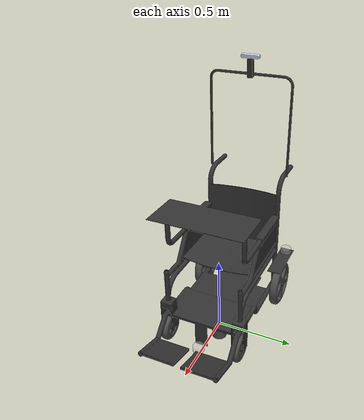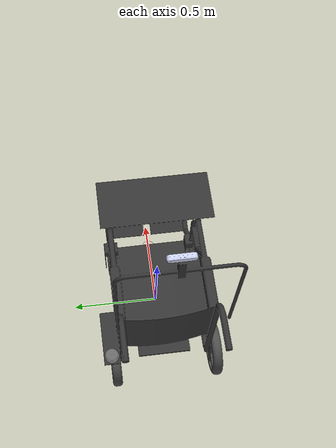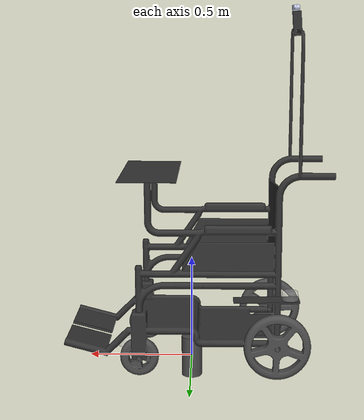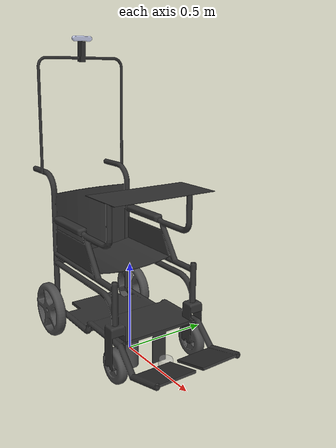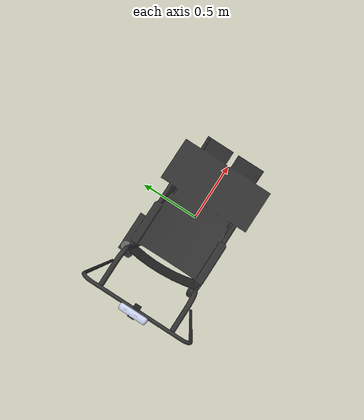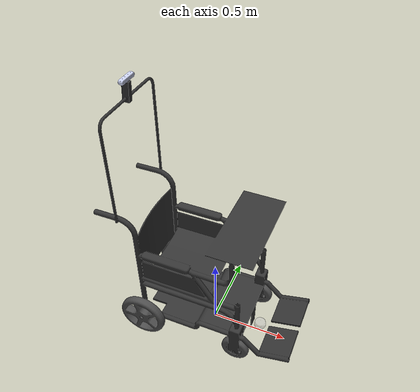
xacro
<?xml version="1.0"?>
<robot name="wheel_chair" xmlns:xacro="http://ros.org/wiki/xacro">
  <xacro:include filename="$(find wheelchair_description)/urdf/wheel_chair.gazebo.xacro" />

  <link name="base_footprint" >
    <inertial>
      <origin
        xyz="8.32667268468867E-17 -0.0275 9.43689570931383E-16"
        rpy="0 0 0" />
      <mass
        value="0.1" />
      <inertia
        ixx="0.0222055020892376"
        ixy="2.73068863816006E-19"
        ixz="-2.79570503430672E-17"
        iyy="0.0429444812918596"
        iyz="-3.90098376880016E-20"
        izz="0.0222055020892377" />
    </inertial>
    <visual>
      <origin
        xyz="0 0 0"
        rpy="0 0 0" />
      <geometry>
        <cylinder length = "0.2" radius="0.05" />
      </geometry>
      <material
        name="">
        <color
          rgba="0.298039215686275 0.298039215686275 0.298039215686275 1" />
      </material>
    </visual>
    <collision>
      <origin
        xyz="-0.4 0 0.15345"
        rpy="0 0 0" /> <!-- contact sensorle ilgili ypailmis degisikliklerden oturu sorun cikarsa burda cok sey degisecek direkt 11 temmuz 2023 lü github versiyonuna döndür -->
      <geometry>
        <mesh
          filename="package://wheel_chair/meshes/base_link.STL" />
      </geometry>
    </collision>

</link>

  <joint name="base_joint" type="fixed">
    <parent link="base_footprint" />
    <child link="base_link" />
    <origin xyz="-0.40 0.0 0.15345" rpy="0 0 0" /><!--Bu contact icin yapilmis footprint degisikligi geri alindiginda aktif edilecek -->
  </joint>

  <link
    name="base_link">
    <inertial>
      <origin
        xyz="0.367710115990865 0.00427594055759772 0.222806503300556"
        rpy="0 0 0" />
      <mass
        value="184.238834662291" />
      <inertia
        ixx="4.71175664250457"
        ixy="0.0385230868676068"
        ixz="1.0740814957226"
        iyy="7.70372211875449"
        iyz="0.0449177005185298"
        izz="4.26521836376027" />
    </inertial>
    <visual>
      <origin
        xyz="0 0 0"
        rpy="0 0 0" />
      <geometry>
        <mesh
          filename="package://wheel_chair/meshes/base_link.STL" />
      </geometry>
      <material
        name="">
        <color
          rgba="0.2 0.2 0.2 1" />
      </material>
    </visual>
    <collision>
      <origin
        xyz="0 0 0"
        rpy="0 0 0" />
      <geometry>
        <mesh
          filename="package://wheel_chair/meshes/base_link.STL" />
      </geometry>
    </collision>
  </link>

  <joint name="imu_joint" type="fixed">
    <parent link="base_link" />
    <child link="imu_link" />
    <origin xyz="-0.032 0 0.068" rpy="0 0 0" />
  </joint>

  <link name="imu_link" />

  <link
    name="left_big_wheel">
    <inertial>
      <origin
        xyz="8.32667268468867E-17 -0.0275 9.43689570931383E-16"
        rpy="0 0 0" />
      <mass
        value="3.19005851775017" />
      <inertia
        ixx="0.0222055020892376"
        ixy="2.73068863816006E-19"
        ixz="-2.79570503430672E-17"
        iyy="0.0429444812918596"
        iyz="-3.90098376880016E-20"
        izz="0.0222055020892377" />
    </inertial>
    <visual>
      <origin
        xyz="0 0 0"
        rpy="0 0 0" />
      <geometry>
        <mesh
          filename="package://wheel_chair/meshes/left_big_wheel.STL" />
      </geometry>
      <material
        name="">
        <color
          rgba="0.298039215686275 0.298039215686275 0.298039215686275 1" />
      </material>
    </visual>
    <collision>
      <origin
        xyz="0 0 0"
        rpy="0 0 0" />
      <geometry>
        <mesh
          filename="package://wheel_chair/meshes/left_big_wheel.STL" />
      </geometry>
    </collision>
  </link>

  <joint name="left_big_wheel_joint" type="continuous">
    <origin xyz="0 0.315 0" rpy="0 0 0" />
    <parent link="base_link" />
    <child link="left_big_wheel" />
    <axis xyz="0 1 0" />
  </joint>

  <link name="right_big_wheel">
    <inertial>
      <origin
        xyz="1.60982338570648E-15 0.0275 1.11022302462516E-15"
        rpy="0 0 0" />
      <mass value="3.19005851775018" />
      <inertia
        ixx="0.0222055020892377"
        ixy="-5.02793463534266E-19"
        ixz="-1.06280135567754E-17"
        iyy="0.0429444812918596"
        iyz="1.34367218703133E-19"
        izz="0.0222055020892377" />
    </inertial>
    <visual>
      <origin
        xyz="0 0 0"
        rpy="0 0 0" />
      <geometry>
        <mesh
          filename="package://wheel_chair/meshes/right_big_wheel.STL" />
      </geometry>
      <material
        name="">
        <color
          rgba="0.298039215686275 0.298039215686275 0.298039215686275 1" />
      </material>
    </visual>
    <collision>
      <origin
        xyz="0 0 0"
        rpy="0 0 0" />
      <geometry>
        <mesh
          filename="package://wheel_chair/meshes/right_big_wheel.STL" />
      </geometry>
    </collision>
  </link>
  <joint
    name="right_big_wheel_joint"
    type="continuous">
    <origin
      xyz="0 -0.315 0"
      rpy="0 0 0" />
    <parent
      link="base_link" />
    <child
      link="right_big_wheel" />
    <axis
      xyz="0 1 0" />
    <limit
      effort="1"
      velocity="1" />
  </joint>
  <link
    name="left_small_wheel">
    <inertial>
      <origin
        xyz="-7.21644966006352E-16 -0.0400000000000002 0"
        rpy="0 0 0" />
      <mass
        value="1.31881639542862" />
      <inertia
        ixx="0.00307756206748821"
        ixy="-4.86196911723968E-19"
        ixz="1.29760768970133E-20"
        iyy="0.00569232821091254"
        iyz="1.99882167723138E-20"
        izz="0.00307756206748821" />
    </inertial>
    <visual>
      <origin
        xyz="0 0 0"
        rpy="0 0 0" />
      <geometry>
        <mesh
          filename="package://wheel_chair/meshes/left_small_wheel.STL" />
      </geometry>
      <material
        name="">
        <color
          rgba="0.298039215686275 0.298039215686275 0.298039215686275 1" />
      </material>
    </visual>
    <collision>
      <origin
        xyz="0 0 0"
        rpy="0 0 0" />
      <geometry>
        <mesh
          filename="package://wheel_chair/meshes/left_small_wheel.STL" />
      </geometry>
    </collision>
  </link>

  <joint
    name="left_small_wheel_joint"
    type="revolute">
    <origin
      xyz="0.64005 0.2835 -0.065"
      rpy="0 0 -0.0013615" />
    <parent
      link="base_link" />
    <child
      link="left_small_wheel" />
    <axis
      xyz="-0.0019131 1 0" />
    <limit
      lower="-100000000000000000.0"
      upper="10000000000000000.0"
      effort="10"
      velocity="100" />
  </joint>

  <link
    name="right_smaal_wheel">
    <inertial>
      <origin
        xyz="0.000198873647039965 0.0399995056128514 2.22044604925031E-15"
        rpy="0 0 0" />
      <mass
        value="1.31881639542862" />
      <inertia
        ixx="0.00307762670242769"
        ixy="1.30000412990577E-05"
        ixz="-3.05847536861125E-19"
        iyy="0.00569226357597306"
        iyz="8.08608700453136E-20"
        izz="0.00307756206748821" />
    </inertial>
    <visual>
      <origin
        xyz="0 0 0"
        rpy="0 0 0" />
      <geometry>
        <mesh
          filename="package://wheel_chair/meshes/right_smaal_wheel.STL" />
      </geometry>
      <material
        name="">
        <color
          rgba="0.298039215686275 0.298039215686275 0.298039215686275 1" />
      </material>
    </visual>
    <collision>
      <origin
        xyz="0 0 0"
        rpy="0 0 0" />
      <geometry>
        <mesh
          filename="package://wheel_chair/meshes/right_smaal_wheel.STL" />
      </geometry>
    </collision>
  </link>
  <joint
    name="right_small_wheel_joint"
    type="revolute">
    <origin
      xyz="0.6398 -0.2835 -0.065"
      rpy="0 0 0" />
    <parent
      link="base_link" />
    <child
      link="right_smaal_wheel" />
    <axis
      xyz="0.0043627 0.99999 0" />
    <limit
      lower="-10000000000000.0"
      upper="10000000000000.0"
      effort="0.1"
      velocity="0.05" />
  </joint>
  <link
    name="rp_laser_back">
    <inertial>
      <origin
        xyz="-0.00393393719392465 1.45541326387055E-05 -0.00550433759472346"
        rpy="0 0 0" />
      <mass
        value="0.165382757413928" />
      <inertia
        ixx="7.88186497400901E-05"
        ixy="4.81327415297136E-08"
        ixz="-1.82339073198479E-06"
        iyy="7.51902892774038E-05"
        iyz="-2.9420939238945E-08"
        izz="0.000109993288450695" />
    </inertial>
    <visual>
      <origin
        xyz="0 0 0"
        rpy="0 0 0" />
      <geometry>
        <mesh
          filename="package://wheel_chair/meshes/rp_laser_back.STL" />
      </geometry>
      <material
        name="">
        <color
          rgba="0.752941176470588 0.752941176470588 0.752941176470588 0.4" />
      </material>
    </visual>
    <collision>
      <origin
        xyz="0 0 0"
        rpy="0 0 0" />
      <geometry>
        <mesh
          filename="package://wheel_chair/meshes/rp_laser_back.STL" />
      </geometry>
    </collision>
  </link>
  <joint
    name="rp_laser_back_joint"
    type="fixed">
    <origin
      xyz="-0.048279 0.305 0.26099"
      rpy="0 0 0" />
    <parent
      link="base_link" />
    <child
      link="rp_laser_back" />
    <axis
      xyz="0 0 0" />
  </joint>
  <link
    name="rp_laser_front">
    <inertial>
      <origin
        xyz="0.00386881875434386 8.69539989361567E-05 -0.00554963797433417"
        rpy="0 0 0" />
      <mass
        value="0.165382751635991" />
      <inertia
        ixx="7.88601133328312E-05"
        ixy="1.44763696263324E-07"
        ixz="2.18328573965282E-06"
        iyy="7.51953617715746E-05"
        iyz="8.61570136662877E-08"
        izz="0.000109946753058707" />
    </inertial>
    <visual>
      <origin
        xyz="0 0 0"
        rpy="0 0 0" />
      <geometry>
        <mesh
          filename="package://wheel_chair/meshes/rp_laser_front.STL" />
      </geometry>
      <material
        name="">
        <color
          rgba="0.752941176470588 0.752941176470588 0.752941176470588 0.4" />
      </material>
    </visual>
    <collision>
      <origin
        xyz="0 0 0"
        rpy="0 0 0" />
      <geometry>
        <mesh
          filename="package://wheel_chair/meshes/rp_laser_front.STL" />
      </geometry>
    </collision>
  </link>
  <joint
    name="rp_laser_front_joint"
    type="fixed">
    <origin
      xyz="0.72155 0.0046595 -0.074152"
      rpy="0 0 0.0" />
    <parent
      link="base_link" />
    <child
      link="rp_laser_front" />
    <axis
      xyz="0 0 0" />
  </joint>
  <link
    name="camera_link">
    <inertial>
      <origin
        xyz="-0.0128303971236894 0.00026345822416235 0.00120890752799729"
        rpy="0 0 0" />
      <mass
        value="0.0247927922484064" />
      <inertia
        ixx="3.56506588599453E-05"
        ixy="-1.15721449744488E-08"
        ixz="-1.82266916058428E-07"
        iyy="2.84011177762109E-06"
        iyz="2.78716575004723E-08"
        izz="3.35091990190486E-05" />
    </inertial>
    <visual>
      <origin
        xyz="0 0 0"
        rpy="0 0 0" />
      <geometry>
        <mesh
          filename="package://wheel_chair/meshes/camera.STL" />
      </geometry>
      <material
        name="">
        <color
          rgba="0.792156862745098 0.819607843137255 0.933333333333333 1" />
      </material>
    </visual>
    <collision>
      <origin
        xyz="0 0 0"
        rpy="0 0 0" />
      <geometry>
        <mesh
          filename="package://wheel_chair/meshes/camera.STL" />
      </geometry>
    </collision>
  </link>
  <joint
    name="camera_joint"
    type="fixed">
    <origin
      xyz="-0.066986 -0.0039691 1.5345"
      rpy="0 0 0" />
    <parent
      link="base_link" />
    <child
      link="camera_link" />
    <axis
      xyz="0 0 0" />
    <limit
      lower="0"
      upper="0"
      effort="0"
      velocity="0" />
  </joint>

  <joint name="camera_depth_joint" type="fixed">
    <origin xyz="0 0 0" rpy="0 0 0" />
    <parent link="camera_link" />
    <child link="camera_depth_frame" />
  </joint>
  <link name="camera_depth_frame" />

  <joint name="camera_depth_optical_joint" type="fixed">
    <origin xyz="0 0 0" rpy="-1.57079632679 0 -1.57079632679" />
    <parent link="camera_depth_frame" />
    <child link="camera_depth_optical_frame" />
  </joint>
  <link name="camera_depth_optical_frame" />

  <!-- camera left IR joints and links -->
  <joint name="camera_infra1_joint" type="fixed">
    <origin xyz="0 0 0" rpy="0 0 0" />
    <parent link="camera_link" />
    <child link="camera_infra1_frame" />
  </joint>
  <link name="camera_infra1_frame" />

  <joint name="camera_infra1_optical_joint" type="fixed">
    <origin xyz="0 0 0" rpy="-1.57079632679 0 -1.57079632679" />
    <parent link="camera_infra1_frame" />
    <child link="camera_infra1_optical_frame" />
  </joint>
  <link name="camera_infra1_optical_frame" />

  <!-- camera right IR joints and links -->
  <joint name="camera_infra2_joint" type="fixed">
    <origin xyz="0 -0.095 0" rpy="0 0 0" />
    <parent link="camera_link" />
    <child link="camera_infra2_frame" />
  </joint>
  <link name="camera_infra2_frame" />

  <joint name="camera_infra2_optical_joint" type="fixed">
    <origin xyz="0 0 0" rpy="-1.57079632679 0 -1.57079632679" />
    <parent link="camera_infra2_frame" />
    <child link="camera_infra2_optical_frame" />
  </joint>
  <link name="camera_infra2_optical_frame" />

  <!-- camera color joints and links -->
  <joint name="camera_color_joint" type="fixed">
    <origin xyz="0 -0.059 0" rpy="0 0 0" />
    <parent link="camera_link" />
    <child link="camera_color_frame" />
  </joint>
  <link name="camera_color_frame" />

  <joint name="camera_color_optical_joint" type="fixed">
    <origin xyz="0 0 0" rpy="-1.57079632679 0 -1.57079632679" />
    <parent link="camera_color_frame" />
    <child link="camera_color_optical_frame" />
  </joint>
  <link name="camera_color_optical_frame" />

  <link name="camera_accel_frame" />
  <link name="camera_accel_optical_frame" />
  <link name="camera_gyro_frame" />
  <link name="camera_gyro_optical_frame" />
  <link name="camera_imu_optical_frame" />

  <!-- IMU -->
  <!-- see datasheet Revision 009, page 114 -->

  <joint name="camera_accel_joint" type="fixed">
    <origin xyz="-0.01602 -0.03022 +0.0074" rpy="0 0 0" />
    <parent link="camera_link" />
    <child link="camera_accel_frame" />
  </joint>

  <joint name="camera_accel_optical_joint" type="fixed">
    <origin xyz="0 0 0" rpy="-1.57 0 -1.57" />
    <parent link="camera_accel_frame" />
    <child link="camera_accel_optical_frame" />
  </joint>

  <joint name="camera_gyro_joint" type="fixed">
    <origin xyz="-0.01602 -0.03022 +0.0074" rpy="0 0 0" />
    <parent link="camera_link" />
    <child link="camera_gyro_frame" />
  </joint>

  <joint name="camera_gyro_optical_joint" type="fixed">
    <origin xyz="0 0 0" rpy="-1.57 0 -1.57" />
    <parent link="camera_gyro_frame" />
    <child link="camera_gyro_optical_frame" />
  </joint>

  <joint name="camera_imu_optical_joint" type="fixed">
    <origin xyz="0 0 0" rpy="0 0 0" />
    <parent link="camera_gyro_optical_frame" />
    <child link="camera_imu_optical_frame" />
  </joint>

</robot>

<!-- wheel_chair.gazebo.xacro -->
<robot name="wheelchair_sim" xmlns:xacro="http://ros.org/wiki/xacro">
  <xacro:arg name="laser_visual" default="false"/>
  <xacro:arg name="imu_visual"   default="false"/>
  <xacro:arg name="camera_name"   default="camera"/>

  <gazebo reference="base_footprint">
    <material>Gazebo/DarkGrey</material>
    <sensor name="base_footprint_contact_sensor" type="contact">
      <always_on>true</always_on>
      <update_rate>10</update_rate>
      <contact>
        <collision>base_footprint_collision</collision>
      </contact>
      <plugin name="base_footprint_bumper" filename="libgazebo_ros_bumper.so">
        <bumperTopicName>base_footprint_contact_sensor_state</bumperTopicName>
        <frameName>base_footprint</frameName>
      </plugin>
    </sensor>
  </gazebo>

  <gazebo reference="base_link">
    <material>Gazebo/DarkGrey</material>
    <sensor name="base_link_contact_sensor" type="contact">
      <always_on>true</always_on>
      <update_rate>10</update_rate>
      <contact>
        <collision>base_link_collision</collision>
      </contact>
      <plugin name="base_link_bumper" filename="libgazebo_ros_bumper.so">
        <bumperTopicName>base_link_contact_sensor_state</bumperTopicName>
        <frameName>base_link</frameName>
      </plugin>
    </sensor>
  </gazebo>

  <gazebo reference="left_big_wheel">
    <mu1>0.4</mu1>
    <mu2>0.4</mu2>
    <kp>1000000.0</kp>
    <kd>1.0</kd>
    <minDepth>0.0</minDepth>
    <maxVel>0.1</maxVel>
    <material>Gazebo/FlatBlack</material>
    <sensor name="left_big_wheel_contact_sensor" type="contact">
      <always_on>true</always_on>
      <update_rate>10</update_rate>
      <contact>
        <collision>left_big_wheel_collision</collision>
      </contact>
      <plugin name="left_big_wheel_bumper" filename="libgazebo_ros_bumper.so">
        <bumperTopicName>left_big_wheel_contact_sensor_state</bumperTopicName>
        <frameName>left_big_wheel</frameName>
      </plugin>
    </sensor>
  </gazebo>

  <gazebo reference="right_big_wheel">
    <mu1>0.4</mu1>
    <mu2>0.4</mu2>
    <kp>1000000.0</kp>
    <kd>1.0</kd>
    <minDepth>0.0</minDepth>
    <maxVel>0.1</maxVel>
    <material>Gazebo/FlatBlack</material>
    <sensor name="right_big_wheel_contact_sensor" type="contact">
      <always_on>true</always_on>
      <update_rate>10</update_rate>
      <contact>
        <collision>right_big_wheel_collision</collision>
      </contact>
      <plugin name="right_big_wheel_bumper" filename="libgazebo_ros_bumper.so">
        <bumperTopicName>right_big_wheel_contact_sensor_state</bumperTopicName>
        <frameName>right_big_wheel</frameName>
      </plugin>
    </sensor>
  </gazebo>

  <gazebo reference="left_small_wheel">
    <mu1>0.0</mu1>
    <mu2>0.08</mu2>
    <kp>1000000.0</kp>
    <kd>1.0</kd>
    <minDepth>0.0</minDepth>
    <maxVel>0.1</maxVel>
    <material>Gazebo/FlatBlack</material>
    <sensor name="left_small_wheel_contact_sensor" type="contact">
      <always_on>true</always_on>
      <update_rate>10</update_rate>
      <contact>
        <collision>left_small_wheel_collision</collision>
      </contact>
      <plugin name="left_small_wheel_bumper" filename="libgazebo_ros_bumper.so">
        <bumperTopicName>left_small_wheel_contact_sensor_state</bumperTopicName>
        <frameName>left_small_wheel</frameName>
      </plugin>
    </sensor>
  </gazebo>

  <gazebo reference="right_smaal_wheel">
    <mu1>0.0</mu1>
    <mu2>0.08</mu2>
    <kp>1000000.0</kp>
    <kd>1.0</kd>
    <minDepth>0.0</minDepth>
    <maxVel>0.1</maxVel>
    <material>Gazebo/FlatBlack</material>
    <sensor name="right_smaal_wheel_contact_sensor" type="contact">
      <always_on>true</always_on>
      <update_rate>10</update_rate>
      <contact>
        <collision>right_smaal_wheel_collision</collision>
      </contact>
      <plugin name="right_smaal_wheel_bumper" filename="libgazebo_ros_bumper.so">
        <bumperTopicName>right_smaal_wheel_contact_sensor_state</bumperTopicName>
        <frameName>right_smaal_wheel</frameName>
      </plugin>
    </sensor>
  </gazebo>

  <gazebo reference="imu_link">
    <sensor type="imu" name="imu">
      <always_on>true</always_on>
      <visualize>$(arg imu_visual)</visualize>
    </sensor>
    <material>Gazebo/FlatBlack</material>
  </gazebo>

  <gazebo>
    <plugin name="wheel_chair_controller" filename="libgazebo_ros_diff_drive.so">
      <commandTopic>cmd_vel</commandTopic>
      <odometryTopic>odom</odometryTopic>
      <odometryFrame>odom</odometryFrame>
      <odometrySource>world</odometrySource>
      <publishOdomTF>true</publishOdomTF>
      <robotBaseFrame>base_footprint</robotBaseFrame>
      <publishWheelTF>false</publishWheelTF>
      <publishTf>true</publishTf>
      <publishWheelJointState>true</publishWheelJointState>
      <legacyMode>false</legacyMode>
      <updateRate>30</updateRate>
      <leftJoint>left_big_wheel_joint</leftJoint>
      <rightJoint>right_big_wheel_joint</rightJoint>
      <wheelSeparation>0.575</wheelSeparation>
      <wheelDiameter>0.324</wheelDiameter>
      <wheelAcceleration>5.0</wheelAcceleration>
      <wheelTorque>10000</wheelTorque>
      <rosDebugLevel>na</rosDebugLevel>
    </plugin>
  </gazebo>

  <gazebo>
    <plugin name="imu_plugin" filename="libgazebo_ros_imu.so">
      <alwaysOn>true</alwaysOn>
      <bodyName>imu_link</bodyName>
      <frameName>imu_link</frameName>
      <topicName>imu</topicName>
      <serviceName>imu_service</serviceName>
      <gaussianNoise>0.0</gaussianNoise>
      <updateRate>0</updateRate>
      <imu>
        <noise>
          <type>gaussian</type>
          <rate>
            <mean>0.0</mean>
            <stddev>2e-4</stddev>
            <bias_mean>0.0000075</bias_mean>
            <bias_stddev>0.0000008</bias_stddev>
          </rate>
          <accel>
            <mean>0.0</mean>
            <stddev>1.7e-2</stddev>
            <bias_mean>0.1</bias_mean>
            <bias_stddev>0.001</bias_stddev>
          </accel>
        </noise>
      </imu>
    </plugin>
  </gazebo>

  <gazebo reference="rp_laser_front">
    <material>Gazebo/RedBright</material>
    <sensor type="ray" name="lds_lfcd_sensor_front">
      <pose>0.00386881875434386 8.69539989361567E-05 -0.00554963797433417 0 0 0</pose>
      <visualize>$(arg laser_visual)</visualize>
      <update_rate>10</update_rate>
      <ray>
        <scan>
          <horizontal>
            <samples>760</samples>
            <resolution>1</resolution>
            <min_angle>-3.1415</min_angle>
            <max_angle>3.1415</max_angle>
          </horizontal>
        </scan>
        <range>
          <min>0.20</min>
          <max>10.0</max>
          <resolution>0.01</resolution>
        </range>
      </ray>
      <plugin name="gazebo_ros_lds_lfcd_controller_front" filename="libgazebo_ros_laser.so">
        <topicName>front_rp/scan</topicName>
        <frameName>rp_laser_front</frameName>
      </plugin>
    </sensor>
  </gazebo>

  <gazebo reference="rp_laser_back">
    <material>Gazebo/Gold</material>
    <sensor type="ray" name="lds_lfcd_sensor_back">
      <pose>-0.00393393719392465 1.45541326387055E-05 -0.00550433759472346 0 0 0</pose>
      <visualize>$(arg laser_visual)</visualize>
      <update_rate>10</update_rate>
      <ray>
        <scan>
          <horizontal>
            <samples>760</samples>
            <resolution>1</resolution>
            <min_angle>-3.1415</min_angle>
            <max_angle>3.1415</max_angle>
          </horizontal>
        </scan>
        <range>
          <min>0.20</min>
          <max>10.0</max>
          <resolution>0.01</resolution>
        </range>
      </ray>
      <plugin name="gazebo_ros_lds_lfcd_controller_back" filename="libgazebo_ros_laser.so">
        <topicName>back_rp/scan</topicName>
        <frameName>rp_laser_back</frameName>
      </plugin>
    </sensor>
  </gazebo>

  <link name="camera_gazebo" />
  <joint name="camera_gazebo_joint" type="fixed">
    <parent link="camera_link"/>
    <child link="camera_gazebo"/>
    <origin xyz="0.0 0 0" rpy="-1.5707963267948966 0 -1.5707963267948966"/>
  </joint>

  <gazebo reference="camera_link">
    <sensor name="rgbd_camera" type="depth">
      <update_rate>30</update_rate>
      <camera>
        <horizontal_fov>1.5184351666666667</horizontal_fov>
        <vertical_fov>1.0122901111111111</vertical_fov>
        <image>
          <width>848</width>
          <height>480</height>
          <format>R8G8B8</format>
        </image>
        <clip>
          <near>0.01</near>
          <far>7.0</far>
        </clip>
      </camera>
      <plugin name="rgbd_camera_controller" filename="libgazebo_ros_openni_kinect.so">
        <baseline>0.2</baseline>
        <alwaysOn>true</alwaysOn>
        <updateRate>30</updateRate>
        <cameraName>/spencer/sensors/rgbd_front_top</cameraName>
        <imageTopicName>/spencer/sensors/rgbd_front_top/rgb/image_rect_color</imageTopicName>
        <cameraInfoTopicName>/spencer/sensors/rgbd_front_top/depth/camera_info</cameraInfoTopicName>
        <depthImageTopicName>/spencer/sensors/rgbd_front_top/depth/image_rect</depthImageTopicName>
        <depthImageCameraInfoTopicName>/spencer/sensors/rgbd_front_top/rgb/camera_info</depthImageCameraInfoTopicName>
        <pointCloudTopicName>/spencer/sensors/rgbd_front_top/depth/points</pointCloudTopicName>
        <frameName>camera_gazebo</frameName>
        <pointCloudCutoff>0.1</pointCloudCutoff>
        <pointCloudCutoffMax>7.0</pointCloudCutoffMax>
        <distortionK1>0.00000000</distortionK1>
        <distortionK2>0.00000000</distortionK2>
        <distortionK3>0.00000000</distortionK3>
        <distortionT1>0.00000000</distortionT1>
        <distortionT2>0.00000000</distortionT2>
        <CxPrime>0</CxPrime>
        <Cx>0</Cx>
        <Cy>0</Cy>
        <focalLength>0</focalLength>
        <hackBaseline>0</hackBaseline>
      </plugin>
    </sensor>
  </gazebo>

</robot>
